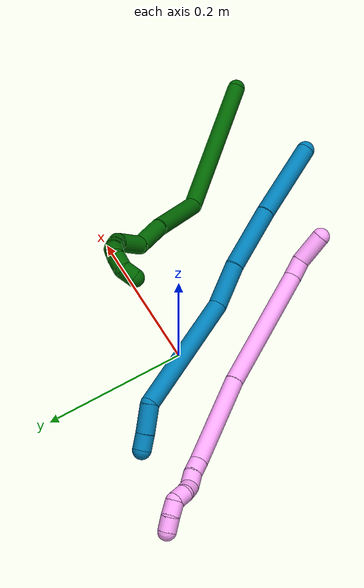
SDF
<sdf version="1.7">
 <world name="default">
  <model name="4">
   <static>0</static>
   <link name="4">
    <collision name="collision-cylinder-e_1_1_4">
     <pose>-0.019924 0.002762 0.008486 -0.314639 -1.14969 0.204811</pose>
     <geometry><cylinder><radius>0.0125</radius><length>0.043663</length></cylinder></geometry>
     <surface>
      <friction><ode><mu>1.16</mu><mu2>1.16</mu2><slip1>0</slip1><slip2>0</slip2></ode></friction>
      <contact><ode><kp>1e+06</kp><kd>1</kd><max_vel>0</max_vel><min_depth>0.001</min_depth></ode></contact>
     </surface>
    </collision>
    <visual name="visual-cylinder-e_1_1_4">
     <pose>-0.019924 0.002762 0.008486 -0.314639 -1.14969 0.204811</pose>
     <geometry><cylinder><radius>0.0125</radius><length>0.043663</length></cylinder></geometry>
     <material><ambient>1 0.65098 0.996078 1</ambient></material>
    </visual>
    <collision name="collision-cylinder-e_2_4_5">
     <pose>-0.051172 0.01146 0.019559 -1.15982 -1.05127 0.726235</pose>
     <geometry><cylinder><radius>0.0125</radius><length>0.026089</length></cylinder></geometry>
     <surface>
      <friction><ode><mu>1.16</mu><mu2>1.16</mu2><slip1>0</slip1><slip2>0</slip2></ode></friction>
      <contact><ode><kp>1e+06</kp><kd>1</kd><max_vel>0</max_vel><min_depth>0.001</min_depth></ode></contact>
     </surface>
    </collision>
    <visual name="visual-cylinder-e_2_4_5">
     <pose>-0.051172 0.01146 0.019559 -1.15982 -1.05127 0.726235</pose>
     <geometry><cylinder><radius>0.0125</radius><length>0.026089</length></cylinder></geometry>
     <material><ambient>1 0.65098 0.996078 1</ambient></material>
    </visual>
    <collision name="collision-cylinder-e_3_5_6">
     <pose>-0.140011 0.063397 0.017733 -1.66646 -1.03321 1.11746</pose>
     <geometry><cylinder><radius>0.0125</radius><length>0.18049</length></cylinder></geometry>
     <surface>
      <friction><ode><mu>1.16</mu><mu2>1.16</mu2><slip1>0</slip1><slip2>0</slip2></ode></friction>
      <contact><ode><kp>1e+06</kp><kd>1</kd><max_vel>0</max_vel><min_depth>0.001</min_depth></ode></contact>
     </surface>
    </collision>
    <visual name="visual-cylinder-e_3_5_6">
     <pose>-0.140011 0.063397 0.017733 -1.66646 -1.03321 1.11746</pose>
     <geometry><cylinder><radius>0.0125</radius><length>0.18049</length></cylinder></geometry>
     <material><ambient>1 0.65098 0.996078 1</ambient></material>
    </visual>
    <collision name="collision-cylinder-e_4_6_7">
     <pose>-0.269385 0.146487 0.011507 -1.6196 -0.949369 0.989627</pose>
     <geometry><cylinder><radius>0.0125</radius><length>0.127566</length></cylinder></geometry>
     <surface>
      <friction><ode><mu>1.16</mu><mu2>1.16</mu2><slip1>0</slip1><slip2>0</slip2></ode></friction>
      <contact><ode><kp>1e+06</kp><kd>1</kd><max_vel>0</max_vel><min_depth>0.001</min_depth></ode></contact>
     </surface>
    </collision>
    <visual name="visual-cylinder-e_4_6_7">
     <pose>-0.269385 0.146487 0.011507 -1.6196 -0.949369 0.989627</pose>
     <geometry><cylinder><radius>0.0125</radius><length>0.127566</length></cylinder></geometry>
     <material><ambient>1 0.65098 0.996078 1</ambient></material>
    </visual>
    <collision name="collision-cylinder-e_5_7_8">
     <pose>-0.329168 0.189641 0.007286 -1.949 -0.881961 1.21527</pose>
     <geometry><cylinder><radius>0.0125</radius><length>0.020531</length></cylinder></geometry>
     <surface>
      <friction><ode><mu>1.16</mu><mu2>1.16</mu2><slip1>0</slip1><slip2>0</slip2></ode></friction>
      <contact><ode><kp>1e+06</kp><kd>1</kd><max_vel>0</max_vel><min_depth>0.001</min_depth></ode></contact>
     </surface>
    </collision>
    <visual name="visual-cylinder-e_5_7_8">
     <pose>-0.329168 0.189641 0.007286 -1.949 -0.881961 1.21527</pose>
     <geometry><cylinder><radius>0.0125</radius><length>0.020531</length></cylinder></geometry>
     <material><ambient>1 0.65098 0.996078 1</ambient></material>
    </visual>
    <collision name="collision-cylinder-e_6_8_9">
     <pose>-0.34421 0.203206 0.003519 -1.74987 -0.751064 0.882009</pose>
     <geometry><cylinder><radius>0.0125</radius><length>0.020858</length></cylinder></geometry>
     <surface>
      <friction><ode><mu>1.16</mu><mu2>1.16</mu2><slip1>0</slip1><slip2>0</slip2></ode></friction>
      <contact><ode><kp>1e+06</kp><kd>1</kd><max_vel>0</max_vel><min_depth>0.001</min_depth></ode></contact>
     </surface>
    </collision>
    <visual name="visual-cylinder-e_6_8_9">
     <pose>-0.34421 0.203206 0.003519 -1.74987 -0.751064 0.882009</pose>
     <geometry><cylinder><radius>0.0125</radius><length>0.020858</length></cylinder></geometry>
     <material><ambient>1 0.65098 0.996078 1</ambient></material>
    </visual>
    <collision name="collision-cylinder-e_7_9_10">
     <pose>-0.356832 0.215777 -0.004891 -2.51824 -0.564985 1.46665</pose>
     <geometry><cylinder><radius>0.0125</radius><length>0.020567</length></cylinder></geometry>
     <surface>
      <friction><ode><mu>1.16</mu><mu2>1.16</mu2><slip1>0</slip1><slip2>0</slip2></ode></friction>
      <contact><ode><kp>1e+06</kp><kd>1</kd><max_vel>0</max_vel><min_depth>0.001</min_depth></ode></contact>
     </surface>
    </collision>
    <visual name="visual-cylinder-e_7_9_10">
     <pose>-0.356832 0.215777 -0.004891 -2.51824 -0.564985 1.46665</pose>
     <geometry><cylinder><radius>0.0125</radius><length>0.020567</length></cylinder></geometry>
     <material><ambient>1 0.65098 0.996078 1</ambient></material>
    </visual>
    <collision name="collision-cylinder-e_8_10_11">
     <pose>-0.370746 0.224043 -0.016391 -2.5186 -0.993393 2.06955</pose>
     <geometry><cylinder><radius>0.0125</radius><length>0.020068</length></cylinder></geometry>
     <surface>
      <friction><ode><mu>1.16</mu><mu2>1.16</mu2><slip1>0</slip1><slip2>0</slip2></ode></friction>
      <contact><ode><kp>1e+06</kp><kd>1</kd><max_vel>0</max_vel><min_depth>0.001</min_depth></ode></contact>
     </surface>
    </collision>
    <visual name="visual-cylinder-e_8_10_11">
     <pose>-0.370746 0.224043 -0.016391 -2.5186 -0.993393 2.06955</pose>
     <geometry><cylinder><radius>0.0125</radius><length>0.020068</length></cylinder></geometry>
     <material><ambient>1 0.65098 0.996078 1</ambient></material>
    </visual>
    <collision name="collision-cylinder-e_9_11_12">
     <pose>-0.386826 0.233254 -0.018282 -1.16882 -0.865209 0.592918</pose>
     <geometry><cylinder><radius>0.0125</radius><length>0.020158</length></cylinder></geometry>
     <surface>
      <friction><ode><mu>1.16</mu><mu2>1.16</mu2><slip1>0</slip1><slip2>0</slip2></ode></friction>
      <contact><ode><kp>1e+06</kp><kd>1</kd><max_vel>0</max_vel><min_depth>0.001</min_depth></ode></contact>
     </surface>
    </collision>
    <visual name="visual-cylinder-e_9_11_12">
     <pose>-0.386826 0.233254 -0.018282 -1.16882 -0.865209 0.592918</pose>
     <geometry><cylinder><radius>0.0125</radius><length>0.020158</length></cylinder></geometry>
     <material><ambient>1 0.65098 0.996078 1</ambient></material>
    </visual>
    <collision name="collision-cylinder-e_10_12_2">
     <pose>-0.401465 0.244685 -0.011009 -0.854373 -0.770244 0.364954</pose>
     <geometry><cylinder><radius>0.0125</radius><length>0.020011</length></cylinder></geometry>
     <surface>
      <friction><ode><mu>1.16</mu><mu2>1.16</mu2><slip1>0</slip1><slip2>0</slip2></ode></friction>
      <contact><ode><kp>1e+06</kp><kd>1</kd><max_vel>0</max_vel><min_depth>0.001</min_depth></ode></contact>
     </surface>
    </collision>
    <visual name="visual-cylinder-e_10_12_2">
     <pose>-0.401465 0.244685 -0.011009 -0.854373 -0.770244 0.364954</pose>
     <geometry><cylinder><radius>0.0125</radius><length>0.020011</length></cylinder></geometry>
     <material><ambient>1 0.65098 0.996078 1</ambient></material>
    </visual>
    <collision name="collision-sphere-2">
     <pose>-0.408432 0.250101 -0.006293 0 -0 0</pose>
     <geometry><sphere><radius>0.0125</radius></sphere></geometry>
     <surface>
      <friction><ode><mu>1.16</mu><mu2>1.16</mu2><slip1>0</slip1><slip2>0</slip2></ode></friction>
      <contact><ode><kp>1e+06</kp><kd>1</kd><max_vel>0</max_vel><min_depth>0.001</min_depth></ode></contact>
     </surface>
    </collision>
    <visual name="visual-sphere-2">
     <pose>-0.408432 0.250101 -0.006293 0 -0 0</pose>
     <geometry><sphere><radius>0.0125</radius></sphere></geometry>
     <material><ambient>1 0.65098 0.996078 1</ambient></material>
    </visual>
    <collision name="collision-sphere-12">
     <pose>-0.394498 0.239269 -0.015725 0 -0 0</pose>
     <geometry><sphere><radius>0.0125</radius></sphere></geometry>
     <surface>
      <friction><ode><mu>1.16</mu><mu2>1.16</mu2><slip1>0</slip1><slip2>0</slip2></ode></friction>
      <contact><ode><kp>1e+06</kp><kd>1</kd><max_vel>0</max_vel><min_depth>0.001</min_depth></ode></contact>
     </surface>
    </collision>
    <visual name="visual-sphere-12">
     <pose>-0.394498 0.239269 -0.015725 0 -0 0</pose>
     <geometry><sphere><radius>0.0125</radius></sphere></geometry>
     <material><ambient>1 0.65098 0.996078 1</ambient></material>
    </visual>
    <collision name="collision-sphere-11">
     <pose>-0.379153 0.227239 -0.020839 0 -0 0</pose>
     <geometry><sphere><radius>0.0125</radius></sphere></geometry>
     <surface>
      <friction><ode><mu>1.16</mu><mu2>1.16</mu2><slip1>0</slip1><slip2>0</slip2></ode></friction>
      <contact><ode><kp>1e+06</kp><kd>1</kd><max_vel>0</max_vel><min_depth>0.001</min_depth></ode></contact>
     </surface>
    </collision>
    <visual name="visual-sphere-11">
     <pose>-0.379153 0.227239 -0.020839 0 -0 0</pose>
     <geometry><sphere><radius>0.0125</radius></sphere></geometry>
     <material><ambient>1 0.65098 0.996078 1</ambient></material>
    </visual>
    <collision name="collision-sphere-10">
     <pose>-0.362338 0.220848 -0.011943 0 -0 0</pose>
     <geometry><sphere><radius>0.0125</radius></sphere></geometry>
     <surface>
      <friction><ode><mu>1.16</mu><mu2>1.16</mu2><slip1>0</slip1><slip2>0</slip2></ode></friction>
      <contact><ode><kp>1e+06</kp><kd>1</kd><max_vel>0</max_vel><min_depth>0.001</min_depth></ode></contact>
     </surface>
    </collision>
    <visual name="visual-sphere-10">
     <pose>-0.362338 0.220848 -0.011943 0 -0 0</pose>
     <geometry><sphere><radius>0.0125</radius></sphere></geometry>
     <material><ambient>1 0.65098 0.996078 1</ambient></material>
    </visual>
    <collision name="collision-sphere-9">
     <pose>-0.351327 0.210707 0.002161 0 -0 0</pose>
     <geometry><sphere><radius>0.0125</radius></sphere></geometry>
     <surface>
      <friction><ode><mu>1.16</mu><mu2>1.16</mu2><slip1>0</slip1><slip2>0</slip2></ode></friction>
      <contact><ode><kp>1e+06</kp><kd>1</kd><max_vel>0</max_vel><min_depth>0.001</min_depth></ode></contact>
     </surface>
    </collision>
    <visual name="visual-sphere-9">
     <pose>-0.351327 0.210707 0.002161 0 -0 0</pose>
     <geometry><sphere><radius>0.0125</radius></sphere></geometry>
     <material><ambient>1 0.65098 0.996078 1</ambient></material>
    </visual>
    <collision name="collision-sphere-4">
     <pose>-0.039849 0.005523 0.016972 0 -0 0</pose>
     <geometry><sphere><radius>0.0125</radius></sphere></geometry>
     <surface>
      <friction><ode><mu>1.16</mu><mu2>1.16</mu2><slip1>0</slip1><slip2>0</slip2></ode></friction>
      <contact><ode><kp>1e+06</kp><kd>1</kd><max_vel>0</max_vel><min_depth>0.001</min_depth></ode></contact>
     </surface>
    </collision>
    <visual name="visual-sphere-4">
     <pose>-0.039849 0.005523 0.016972 0 -0 0</pose>
     <geometry><sphere><radius>0.0125</radius></sphere></geometry>
     <material><ambient>1 0.65098 0.996078 1</ambient></material>
    </visual>
    <collision name="collision-sphere-1">
     <geometry><sphere><radius>0.0125</radius></sphere></geometry>
     <surface>
      <friction><ode><mu>1.16</mu><mu2>1.16</mu2><slip1>0</slip1><slip2>0</slip2></ode></friction>
      <contact><ode><kp>1e+06</kp><kd>1</kd><max_vel>0</max_vel><min_depth>0.001</min_depth></ode></contact>
     </surface>
    </collision>
    <visual name="visual-sphere-1">
     <geometry><sphere><radius>0.0125</radius></sphere></geometry>
     <material><ambient>1 0.65098 0.996078 1</ambient></material>
    </visual>
    <collision name="collision-sphere-8">
     <pose>-0.337093 0.195705 0.004876 0 -0 0</pose>
     <geometry><sphere><radius>0.0125</radius></sphere></geometry>
     <surface>
      <friction><ode><mu>1.16</mu><mu2>1.16</mu2><slip1>0</slip1><slip2>0</slip2></ode></friction>
      <contact><ode><kp>1e+06</kp><kd>1</kd><max_vel>0</max_vel><min_depth>0.001</min_depth></ode></contact>
     </surface>
    </collision>
    <visual name="visual-sphere-8">
     <pose>-0.337093 0.195705 0.004876 0 -0 0</pose>
     <geometry><sphere><radius>0.0125</radius></sphere></geometry>
     <material><ambient>1 0.65098 0.996078 1</ambient></material>
    </visual>
    <collision name="collision-sphere-5">
     <pose>-0.062495 0.017397 0.022146 0 -0 0</pose>
     <geometry><sphere><radius>0.0125</radius></sphere></geometry>
     <surface>
      <friction><ode><mu>1.16</mu><mu2>1.16</mu2><slip1>0</slip1><slip2>0</slip2></ode></friction>
      <contact><ode><kp>1e+06</kp><kd>1</kd><max_vel>0</max_vel><min_depth>0.001</min_depth></ode></contact>
     </surface>
    </collision>
    <visual name="visual-sphere-5">
     <pose>-0.062495 0.017397 0.022146 0 -0 0</pose>
     <geometry><sphere><radius>0.0125</radius></sphere></geometry>
     <material><ambient>1 0.65098 0.996078 1</ambient></material>
    </visual>
    <collision name="collision-sphere-6">
     <pose>-0.217526 0.109397 0.013319 0 -0 0</pose>
     <geometry><sphere><radius>0.0125</radius></sphere></geometry>
     <surface>
      <friction><ode><mu>1.16</mu><mu2>1.16</mu2><slip1>0</slip1><slip2>0</slip2></ode></friction>
      <contact><ode><kp>1e+06</kp><kd>1</kd><max_vel>0</max_vel><min_depth>0.001</min_depth></ode></contact>
     </surface>
    </collision>
    <visual name="visual-sphere-6">
     <pose>-0.217526 0.109397 0.013319 0 -0 0</pose>
     <geometry><sphere><radius>0.0125</radius></sphere></geometry>
     <material><ambient>1 0.65098 0.996078 1</ambient></material>
    </visual>
    <collision name="collision-sphere-7">
     <pose>-0.321244 0.183577 0.009695 0 -0 0</pose>
     <geometry><sphere><radius>0.0125</radius></sphere></geometry>
     <surface>
      <friction><ode><mu>1.16</mu><mu2>1.16</mu2><slip1>0</slip1><slip2>0</slip2></ode></friction>
      <contact><ode><kp>1e+06</kp><kd>1</kd><max_vel>0</max_vel><min_depth>0.001</min_depth></ode></contact>
     </surface>
    </collision>
    <visual name="visual-sphere-7">
     <pose>-0.321244 0.183577 0.009695 0 -0 0</pose>
     <geometry><sphere><radius>0.0125</radius></sphere></geometry>
     <material><ambient>1 0.65098 0.996078 1</ambient></material>
    </visual>
    <inertial>
     <pose>-0.212775 0.114426 0.009508 0 -0 0</pose>
     <mass>0.5</mass>
     <inertia>
      <ixx>0.000465</ixx>
      <ixy>0</ixy>
      <ixz>0</ixz>
      <iyy>0.000834</iyy>
      <iyz>0</iyz>
      <izz>0.000224</izz>
     </inertia>
    </inertial>
   </link>
   <pose>0.041693 -0.252185 0.040095 3.01784 -0.127762 -1.53072</pose>
  </model>
  <model name="6">
   <static>0</static>
   <link name="6">
    <collision name="collision-cylinder-e_1_1_4">
     <pose>0.005714 0.001853 -0.100913 -3.12324 0.056553 -2.51398</pose>
     <geometry><cylinder><radius>0.0125</radius><length>0.202184</length></cylinder></geometry>
     <surface>
      <friction><ode><mu>1.16</mu><mu2>1.16</mu2><slip1>0</slip1><slip2>0</slip2></ode></friction>
      <contact><ode><kp>1e+06</kp><kd>1</kd><max_vel>0</max_vel><min_depth>0.001</min_depth></ode></contact>
     </surface>
    </collision>
    <visual name="visual-cylinder-e_1_1_4">
     <pose>0.005714 0.001853 -0.100913 -3.12324 0.056553 -2.51398</pose>
     <geometry><cylinder><radius>0.0125</radius><length>0.202184</length></cylinder></geometry>
     <material><ambient>0 0.392157 0.003922 1</ambient></material>
    </visual>
    <collision name="collision-cylinder-e_2_4_5">
     <pose>-0.003072 0.030557 -0.239539 -2.52285 -0.303528 0.892578</pose>
     <geometry><cylinder><radius>0.0125</radius><length>0.097025</length></cylinder></geometry>
     <surface>
      <friction><ode><mu>1.16</mu><mu2>1.16</mu2><slip1>0</slip1><slip2>0</slip2></ode></friction>
      <contact><ode><kp>1e+06</kp><kd>1</kd><max_vel>0</max_vel><min_depth>0.001</min_depth></ode></contact>
     </surface>
    </collision>
    <visual name="visual-cylinder-e_2_4_5">
     <pose>-0.003072 0.030557 -0.239539 -2.52285 -0.303528 0.892578</pose>
     <geometry><cylinder><radius>0.0125</radius><length>0.097025</length></cylinder></geometry>
     <material><ambient>0 0.392157 0.003922 1</ambient></material>
    </visual>
    <collision name="collision-cylinder-e_3_5_6">
     <pose>-0.02199 0.068848 -0.299068 -2.65866 -0.177455 0.693294</pose>
     <geometry><cylinder><radius>0.0125</radius><length>0.050054</length></cylinder></geometry>
     <surface>
      <friction><ode><mu>1.16</mu><mu2>1.16</mu2><slip1>0</slip1><slip2>0</slip2></ode></friction>
      <contact><ode><kp>1e+06</kp><kd>1</kd><max_vel>0</max_vel><min_depth>0.001</min_depth></ode></contact>
     </surface>
    </collision>
    <visual name="visual-cylinder-e_3_5_6">
     <pose>-0.02199 0.068848 -0.299068 -2.65866 -0.177455 0.693294</pose>
     <geometry><cylinder><radius>0.0125</radius><length>0.050054</length></cylinder></geometry>
     <material><ambient>0 0.392157 0.003922 1</ambient></material>
    </visual>
    <collision name="collision-cylinder-e_4_6_7">
     <pose>-0.031169 0.098828 -0.330141 -2.03383 -0.225836 0.36269</pose>
     <geometry><cylinder><radius>0.0125</radius><length>0.042526</length></cylinder></geometry>
     <surface>
      <friction><ode><mu>1.16</mu><mu2>1.16</mu2><slip1>0</slip1><slip2>0</slip2></ode></friction>
      <contact><ode><kp>1e+06</kp><kd>1</kd><max_vel>0</max_vel><min_depth>0.001</min_depth></ode></contact>
     </surface>
    </collision>
    <visual name="visual-cylinder-e_4_6_7">
     <pose>-0.031169 0.098828 -0.330141 -2.03383 -0.225836 0.36269</pose>
     <geometry><cylinder><radius>0.0125</radius><length>0.042526</length></cylinder></geometry>
     <material><ambient>0 0.392157 0.003922 1</ambient></material>
    </visual>
    <collision name="collision-cylinder-e_5_7_8">
     <pose>-0.044545 0.122136 -0.347611 -2.61578 -0.736786 1.92387</pose>
     <geometry><cylinder><radius>0.0125</radius><length>0.025645</length></cylinder></geometry>
     <surface>
      <friction><ode><mu>1.16</mu><mu2>1.16</mu2><slip1>0</slip1><slip2>0</slip2></ode></friction>
      <contact><ode><kp>1e+06</kp><kd>1</kd><max_vel>0</max_vel><min_depth>0.001</min_depth></ode></contact>
     </surface>
    </collision>
    <visual name="visual-cylinder-e_5_7_8">
     <pose>-0.044545 0.122136 -0.347611 -2.61578 -0.736786 1.92387</pose>
     <geometry><cylinder><radius>0.0125</radius><length>0.025645</length></cylinder></geometry>
     <material><ambient>0 0.392157 0.003922 1</ambient></material>
    </visual>
    <collision name="collision-cylinder-e_6_8_9">
     <pose>-0.060487 0.130558 -0.362261 -2.62511 -0.78027 1.99965</pose>
     <geometry><cylinder><radius>0.0125</radius><length>0.020829</length></cylinder></geometry>
     <surface>
      <friction><ode><mu>1.16</mu><mu2>1.16</mu2><slip1>0</slip1><slip2>0</slip2></ode></friction>
      <contact><ode><kp>1e+06</kp><kd>1</kd><max_vel>0</max_vel><min_depth>0.001</min_depth></ode></contact>
     </surface>
    </collision>
    <visual name="visual-cylinder-e_6_8_9">
     <pose>-0.060487 0.130558 -0.362261 -2.62511 -0.78027 1.99965</pose>
     <geometry><cylinder><radius>0.0125</radius><length>0.020829</length></cylinder></geometry>
     <material><ambient>0 0.392157 0.003922 1</ambient></material>
    </visual>
    <collision name="collision-cylinder-e_7_9_10">
     <pose>-0.075072 0.133677 -0.376735 3.07503 -0.733419 -2.96867</pose>
     <geometry><cylinder><radius>0.0125</radius><length>0.021686</length></cylinder></geometry>
     <surface>
      <friction><ode><mu>1.16</mu><mu2>1.16</mu2><slip1>0</slip1><slip2>0</slip2></ode></friction>
      <contact><ode><kp>1e+06</kp><kd>1</kd><max_vel>0</max_vel><min_depth>0.001</min_depth></ode></contact>
     </surface>
    </collision>
    <visual name="visual-cylinder-e_7_9_10">
     <pose>-0.075072 0.133677 -0.376735 3.07503 -0.733419 -2.96867</pose>
     <geometry><cylinder><radius>0.0125</radius><length>0.021686</length></cylinder></geometry>
     <material><ambient>0 0.392157 0.003922 1</ambient></material>
    </visual>
    <collision name="collision-cylinder-e_8_10_11">
     <pose>-0.086395 0.12783 -0.392216 2.52181 -0.41824 -1.1706</pose>
     <geometry><cylinder><radius>0.0125</radius><length>0.020013</length></cylinder></geometry>
     <surface>
      <friction><ode><mu>1.16</mu><mu2>1.16</mu2><slip1>0</slip1><slip2>0</slip2></ode></friction>
      <contact><ode><kp>1e+06</kp><kd>1</kd><max_vel>0</max_vel><min_depth>0.001</min_depth></ode></contact>
     </surface>
    </collision>
    <visual name="visual-cylinder-e_8_10_11">
     <pose>-0.086395 0.12783 -0.392216 2.52181 -0.41824 -1.1706</pose>
     <geometry><cylinder><radius>0.0125</radius><length>0.020013</length></cylinder></geometry>
     <material><ambient>0 0.392157 0.003922 1</ambient></material>
    </visual>
    <collision name="collision-cylinder-e_9_11_2">
     <pose>-0.093836 0.113583 -0.402679 1.89668 -0.343842 -0.474793</pose>
     <geometry><cylinder><radius>0.0125</radius><length>0.020038</length></cylinder></geometry>
     <surface>
      <friction><ode><mu>1.16</mu><mu2>1.16</mu2><slip1>0</slip1><slip2>0</slip2></ode></friction>
      <contact><ode><kp>1e+06</kp><kd>1</kd><max_vel>0</max_vel><min_depth>0.001</min_depth></ode></contact>
     </surface>
    </collision>
    <visual name="visual-cylinder-e_9_11_2">
     <pose>-0.093836 0.113583 -0.402679 1.89668 -0.343842 -0.474793</pose>
     <geometry><cylinder><radius>0.0125</radius><length>0.020038</length></cylinder></geometry>
     <material><ambient>0 0.392157 0.003922 1</ambient></material>
    </visual>
    <collision name="collision-sphere-2">
     <pose>-0.097214 0.104647 -0.405699 0 -0 0</pose>
     <geometry><sphere><radius>0.0125</radius></sphere></geometry>
     <surface>
      <friction><ode><mu>1.16</mu><mu2>1.16</mu2><slip1>0</slip1><slip2>0</slip2></ode></friction>
      <contact><ode><kp>1e+06</kp><kd>1</kd><max_vel>0</max_vel><min_depth>0.001</min_depth></ode></contact>
     </surface>
    </collision>
    <visual name="visual-sphere-2">
     <pose>-0.097214 0.104647 -0.405699 0 -0 0</pose>
     <geometry><sphere><radius>0.0125</radius></sphere></geometry>
     <material><ambient>0 0.392157 0.003922 1</ambient></material>
    </visual>
    <collision name="collision-sphere-11">
     <pose>-0.090459 0.122519 -0.399659 0 -0 0</pose>
     <geometry><sphere><radius>0.0125</radius></sphere></geometry>
     <surface>
      <friction><ode><mu>1.16</mu><mu2>1.16</mu2><slip1>0</slip1><slip2>0</slip2></ode></friction>
      <contact><ode><kp>1e+06</kp><kd>1</kd><max_vel>0</max_vel><min_depth>0.001</min_depth></ode></contact>
     </surface>
    </collision>
    <visual name="visual-sphere-11">
     <pose>-0.090459 0.122519 -0.399659 0 -0 0</pose>
     <geometry><sphere><radius>0.0125</radius></sphere></geometry>
     <material><ambient>0 0.392157 0.003922 1</ambient></material>
    </visual>
    <collision name="collision-sphere-10">
     <pose>-0.082331 0.133141 -0.384773 0 -0 0</pose>
     <geometry><sphere><radius>0.0125</radius></sphere></geometry>
     <surface>
      <friction><ode><mu>1.16</mu><mu2>1.16</mu2><slip1>0</slip1><slip2>0</slip2></ode></friction>
      <contact><ode><kp>1e+06</kp><kd>1</kd><max_vel>0</max_vel><min_depth>0.001</min_depth></ode></contact>
     </surface>
    </collision>
    <visual name="visual-sphere-10">
     <pose>-0.082331 0.133141 -0.384773 0 -0 0</pose>
     <geometry><sphere><radius>0.0125</radius></sphere></geometry>
     <material><ambient>0 0.392157 0.003922 1</ambient></material>
    </visual>
    <collision name="collision-sphere-9">
     <pose>-0.067814 0.134213 -0.368698 0 -0 0</pose>
     <geometry><sphere><radius>0.0125</radius></sphere></geometry>
     <surface>
      <friction><ode><mu>1.16</mu><mu2>1.16</mu2><slip1>0</slip1><slip2>0</slip2></ode></friction>
      <contact><ode><kp>1e+06</kp><kd>1</kd><max_vel>0</max_vel><min_depth>0.001</min_depth></ode></contact>
     </surface>
    </collision>
    <visual name="visual-sphere-9">
     <pose>-0.067814 0.134213 -0.368698 0 -0 0</pose>
     <geometry><sphere><radius>0.0125</radius></sphere></geometry>
     <material><ambient>0 0.392157 0.003922 1</ambient></material>
    </visual>
    <collision name="collision-sphere-4">
     <pose>0.011428 0.003705 -0.201827 0 -0 0</pose>
     <geometry><sphere><radius>0.0125</radius></sphere></geometry>
     <surface>
      <friction><ode><mu>1.16</mu><mu2>1.16</mu2><slip1>0</slip1><slip2>0</slip2></ode></friction>
      <contact><ode><kp>1e+06</kp><kd>1</kd><max_vel>0</max_vel><min_depth>0.001</min_depth></ode></contact>
     </surface>
    </collision>
    <visual name="visual-sphere-4">
     <pose>0.011428 0.003705 -0.201827 0 -0 0</pose>
     <geometry><sphere><radius>0.0125</radius></sphere></geometry>
     <material><ambient>0 0.392157 0.003922 1</ambient></material>
    </visual>
    <collision name="collision-sphere-1">
     <geometry><sphere><radius>0.0125</radius></sphere></geometry>
     <surface>
      <friction><ode><mu>1.16</mu><mu2>1.16</mu2><slip1>0</slip1><slip2>0</slip2></ode></friction>
      <contact><ode><kp>1e+06</kp><kd>1</kd><max_vel>0</max_vel><min_depth>0.001</min_depth></ode></contact>
     </surface>
    </collision>
    <visual name="visual-sphere-1">
     <geometry><sphere><radius>0.0125</radius></sphere></geometry>
     <material><ambient>0 0.392157 0.003922 1</ambient></material>
    </visual>
    <collision name="collision-sphere-8">
     <pose>-0.053161 0.126902 -0.355825 0 -0 0</pose>
     <geometry><sphere><radius>0.0125</radius></sphere></geometry>
     <surface>
      <friction><ode><mu>1.16</mu><mu2>1.16</mu2><slip1>0</slip1><slip2>0</slip2></ode></friction>
      <contact><ode><kp>1e+06</kp><kd>1</kd><max_vel>0</max_vel><min_depth>0.001</min_depth></ode></contact>
     </surface>
    </collision>
    <visual name="visual-sphere-8">
     <pose>-0.053161 0.126902 -0.355825 0 -0 0</pose>
     <geometry><sphere><radius>0.0125</radius></sphere></geometry>
     <material><ambient>0 0.392157 0.003922 1</ambient></material>
    </visual>
    <collision name="collision-sphere-5">
     <pose>-0.017572 0.057408 -0.277251 0 -0 0</pose>
     <geometry><sphere><radius>0.0125</radius></sphere></geometry>
     <surface>
      <friction><ode><mu>1.16</mu><mu2>1.16</mu2><slip1>0</slip1><slip2>0</slip2></ode></friction>
      <contact><ode><kp>1e+06</kp><kd>1</kd><max_vel>0</max_vel><min_depth>0.001</min_depth></ode></contact>
     </surface>
    </collision>
    <visual name="visual-sphere-5">
     <pose>-0.017572 0.057408 -0.277251 0 -0 0</pose>
     <geometry><sphere><radius>0.0125</radius></sphere></geometry>
     <material><ambient>0 0.392157 0.003922 1</ambient></material>
    </visual>
    <collision name="collision-sphere-6">
     <pose>-0.026407 0.080287 -0.320885 0 -0 0</pose>
     <geometry><sphere><radius>0.0125</radius></sphere></geometry>
     <surface>
      <friction><ode><mu>1.16</mu><mu2>1.16</mu2><slip1>0</slip1><slip2>0</slip2></ode></friction>
      <contact><ode><kp>1e+06</kp><kd>1</kd><max_vel>0</max_vel><min_depth>0.001</min_depth></ode></contact>
     </surface>
    </collision>
    <visual name="visual-sphere-6">
     <pose>-0.026407 0.080287 -0.320885 0 -0 0</pose>
     <geometry><sphere><radius>0.0125</radius></sphere></geometry>
     <material><ambient>0 0.392157 0.003922 1</ambient></material>
    </visual>
    <collision name="collision-sphere-7">
     <pose>-0.03593 0.117369 -0.339398 0 -0 0</pose>
     <geometry><sphere><radius>0.0125</radius></sphere></geometry>
     <surface>
      <friction><ode><mu>1.16</mu><mu2>1.16</mu2><slip1>0</slip1><slip2>0</slip2></ode></friction>
      <contact><ode><kp>1e+06</kp><kd>1</kd><max_vel>0</max_vel><min_depth>0.001</min_depth></ode></contact>
     </surface>
    </collision>
    <visual name="visual-sphere-7">
     <pose>-0.03593 0.117369 -0.339398 0 -0 0</pose>
     <geometry><sphere><radius>0.0125</radius></sphere></geometry>
     <material><ambient>0 0.392157 0.003922 1</ambient></material>
    </visual>
    <inertial>
     <pose>-0.018417 0.049146 -0.226403 0 -0 0</pose>
     <mass>0.5</mass>
     <inertia>
      <ixx>-0.000844</ixx>
      <ixy>0</ixy>
      <ixz>0</ixz>
      <iyy>0.000198</iyy>
      <iyz>0</iyz>
      <izz>-0.000107</izz>
     </inertia>
    </inertial>
   </link>
   <pose>0.320101 -0.283914 0.032039 1.50656 0.958064 0.714946</pose>
  </model>
  <model name="9">
   <static>0</static>
   <link name="9">
    <collision name="collision-cylinder-e_1_1_4">
     <pose>-0.020985 -0.004079 -0.05364 3.06569 -0.371944 -2.74335</pose>
     <geometry><cylinder><radius>0.0125</radius><length>0.115486</length></cylinder></geometry>
     <surface>
      <friction><ode><mu>1.16</mu><mu2>1.16</mu2><slip1>0</slip1><slip2>0</slip2></ode></friction>
      <contact><ode><kp>1e+06</kp><kd>1</kd><max_vel>0</max_vel><min_depth>0.001</min_depth></ode></contact>
     </surface>
    </collision>
    <visual name="visual-cylinder-e_1_1_4">
     <pose>-0.020985 -0.004079 -0.05364 3.06569 -0.371944 -2.74335</pose>
     <geometry><cylinder><radius>0.0125</radius><length>0.115486</length></cylinder></geometry>
     <material><ambient>0 0.490196 0.709804 1</ambient></material>
    </visual>
    <collision name="collision-cylinder-e_2_4_5">
     <pose>-0.056542 -0.00909 -0.150256 3.11991 -0.326812 -3.01027</pose>
     <geometry><cylinder><radius>0.0125</radius><length>0.090777</length></cylinder></geometry>
     <surface>
      <friction><ode><mu>1.16</mu><mu2>1.16</mu2><slip1>0</slip1><slip2>0</slip2></ode></friction>
      <contact><ode><kp>1e+06</kp><kd>1</kd><max_vel>0</max_vel><min_depth>0.001</min_depth></ode></contact>
     </surface>
    </collision>
    <visual name="visual-cylinder-e_2_4_5">
     <pose>-0.056542 -0.00909 -0.150256 3.11991 -0.326812 -3.01027</pose>
     <geometry><cylinder><radius>0.0125</radius><length>0.090777</length></cylinder></geometry>
     <material><ambient>0 0.490196 0.709804 1</ambient></material>
    </visual>
    <collision name="collision-cylinder-e_3_5_6">
     <pose>-0.076987 -0.008168 -0.222642 -3.07863 -0.196764 2.52386</pose>
     <geometry><cylinder><radius>0.0125</radius><length>0.060096</length></cylinder></geometry>
     <surface>
      <friction><ode><mu>1.16</mu><mu2>1.16</mu2><slip1>0</slip1><slip2>0</slip2></ode></friction>
      <contact><ode><kp>1e+06</kp><kd>1</kd><max_vel>0</max_vel><min_depth>0.001</min_depth></ode></contact>
     </surface>
    </collision>
    <visual name="visual-cylinder-e_3_5_6">
     <pose>-0.076987 -0.008168 -0.222642 -3.07863 -0.196764 2.52386</pose>
     <geometry><cylinder><radius>0.0125</radius><length>0.060096</length></cylinder></geometry>
     <material><ambient>0 0.490196 0.709804 1</ambient></material>
    </visual>
    <collision name="collision-cylinder-e_4_6_7">
     <pose>-0.117252 -0.017215 -0.330868 3.00414 -0.407974 -2.49916</pose>
     <geometry><cylinder><radius>0.0125</radius><length>0.173363</length></cylinder></geometry>
     <surface>
      <friction><ode><mu>1.16</mu><mu2>1.16</mu2><slip1>0</slip1><slip2>0</slip2></ode></friction>
      <contact><ode><kp>1e+06</kp><kd>1</kd><max_vel>0</max_vel><min_depth>0.001</min_depth></ode></contact>
     </surface>
    </collision>
    <visual name="visual-cylinder-e_4_6_7">
     <pose>-0.117252 -0.017215 -0.330868 3.00414 -0.407974 -2.49916</pose>
     <geometry><cylinder><radius>0.0125</radius><length>0.173363</length></cylinder></geometry>
     <material><ambient>0 0.490196 0.709804 1</ambient></material>
    </visual>
    <collision name="collision-cylinder-e_5_7_8">
     <pose>-0.149776 -0.023416 -0.428533 -2.89716 0.095811 -0.744255</pose>
     <geometry><cylinder><radius>0.0125</radius><length>0.03903</length></cylinder></geometry>
     <surface>
      <friction><ode><mu>1.16</mu><mu2>1.16</mu2><slip1>0</slip1><slip2>0</slip2></ode></friction>
      <contact><ode><kp>1e+06</kp><kd>1</kd><max_vel>0</max_vel><min_depth>0.001</min_depth></ode></contact>
     </surface>
    </collision>
    <visual name="visual-cylinder-e_5_7_8">
     <pose>-0.149776 -0.023416 -0.428533 -2.89716 0.095811 -0.744255</pose>
     <geometry><cylinder><radius>0.0125</radius><length>0.03903</length></cylinder></geometry>
     <material><ambient>0 0.490196 0.709804 1</ambient></material>
    </visual>
    <collision name="collision-cylinder-e_6_8_2">
     <pose>-0.147349 -0.016007 -0.457639 -2.8835 0.052753 -0.401144</pose>
     <geometry><cylinder><radius>0.0125</radius><length>0.021248</length></cylinder></geometry>
     <surface>
      <friction><ode><mu>1.16</mu><mu2>1.16</mu2><slip1>0</slip1><slip2>0</slip2></ode></friction>
      <contact><ode><kp>1e+06</kp><kd>1</kd><max_vel>0</max_vel><min_depth>0.001</min_depth></ode></contact>
     </surface>
    </collision>
    <visual name="visual-cylinder-e_6_8_2">
     <pose>-0.147349 -0.016007 -0.457639 -2.8835 0.052753 -0.401144</pose>
     <geometry><cylinder><radius>0.0125</radius><length>0.021248</length></cylinder></geometry>
     <material><ambient>0 0.490196 0.709804 1</ambient></material>
    </visual>
    <collision name="collision-sphere-2">
     <pose>-0.146789 -0.013299 -0.467897 0 -0 0</pose>
     <geometry><sphere><radius>0.0125</radius></sphere></geometry>
     <surface>
      <friction><ode><mu>1.16</mu><mu2>1.16</mu2><slip1>0</slip1><slip2>0</slip2></ode></friction>
      <contact><ode><kp>1e+06</kp><kd>1</kd><max_vel>0</max_vel><min_depth>0.001</min_depth></ode></contact>
     </surface>
    </collision>
    <visual name="visual-sphere-2">
     <pose>-0.146789 -0.013299 -0.467897 0 -0 0</pose>
     <geometry><sphere><radius>0.0125</radius></sphere></geometry>
     <material><ambient>0 0.490196 0.709804 1</ambient></material>
    </visual>
    <collision name="collision-sphere-4">
     <pose>-0.041971 -0.008158 -0.10728 0 -0 0</pose>
     <geometry><sphere><radius>0.0125</radius></sphere></geometry>
     <surface>
      <friction><ode><mu>1.16</mu><mu2>1.16</mu2><slip1>0</slip1><slip2>0</slip2></ode></friction>
      <contact><ode><kp>1e+06</kp><kd>1</kd><max_vel>0</max_vel><min_depth>0.001</min_depth></ode></contact>
     </surface>
    </collision>
    <visual name="visual-sphere-4">
     <pose>-0.041971 -0.008158 -0.10728 0 -0 0</pose>
     <geometry><sphere><radius>0.0125</radius></sphere></geometry>
     <material><ambient>0 0.490196 0.709804 1</ambient></material>
    </visual>
    <collision name="collision-sphere-1">
     <geometry><sphere><radius>0.0125</radius></sphere></geometry>
     <surface>
      <friction><ode><mu>1.16</mu><mu2>1.16</mu2><slip1>0</slip1><slip2>0</slip2></ode></friction>
      <contact><ode><kp>1e+06</kp><kd>1</kd><max_vel>0</max_vel><min_depth>0.001</min_depth></ode></contact>
     </surface>
    </collision>
    <visual name="visual-sphere-1">
     <geometry><sphere><radius>0.0125</radius></sphere></geometry>
     <material><ambient>0 0.490196 0.709804 1</ambient></material>
    </visual>
    <collision name="collision-sphere-8">
     <pose>-0.147909 -0.018715 -0.447381 0 -0 0</pose>
     <geometry><sphere><radius>0.0125</radius></sphere></geometry>
     <surface>
      <friction><ode><mu>1.16</mu><mu2>1.16</mu2><slip1>0</slip1><slip2>0</slip2></ode></friction>
      <contact><ode><kp>1e+06</kp><kd>1</kd><max_vel>0</max_vel><min_depth>0.001</min_depth></ode></contact>
     </surface>
    </collision>
    <visual name="visual-sphere-8">
     <pose>-0.147909 -0.018715 -0.447381 0 -0 0</pose>
     <geometry><sphere><radius>0.0125</radius></sphere></geometry>
     <material><ambient>0 0.490196 0.709804 1</ambient></material>
    </visual>
    <collision name="collision-sphere-5">
     <pose>-0.071113 -0.010022 -0.193232 0 -0 0</pose>
     <geometry><sphere><radius>0.0125</radius></sphere></geometry>
     <surface>
      <friction><ode><mu>1.16</mu><mu2>1.16</mu2><slip1>0</slip1><slip2>0</slip2></ode></friction>
      <contact><ode><kp>1e+06</kp><kd>1</kd><max_vel>0</max_vel><min_depth>0.001</min_depth></ode></contact>
     </surface>
    </collision>
    <visual name="visual-sphere-5">
     <pose>-0.071113 -0.010022 -0.193232 0 -0 0</pose>
     <geometry><sphere><radius>0.0125</radius></sphere></geometry>
     <material><ambient>0 0.490196 0.709804 1</ambient></material>
    </visual>
    <collision name="collision-sphere-6">
     <pose>-0.082861 -0.006314 -0.252052 0 -0 0</pose>
     <geometry><sphere><radius>0.0125</radius></sphere></geometry>
     <surface>
      <friction><ode><mu>1.16</mu><mu2>1.16</mu2><slip1>0</slip1><slip2>0</slip2></ode></friction>
      <contact><ode><kp>1e+06</kp><kd>1</kd><max_vel>0</max_vel><min_depth>0.001</min_depth></ode></contact>
     </surface>
    </collision>
    <visual name="visual-sphere-6">
     <pose>-0.082861 -0.006314 -0.252052 0 -0 0</pose>
     <geometry><sphere><radius>0.0125</radius></sphere></geometry>
     <material><ambient>0 0.490196 0.709804 1</ambient></material>
    </visual>
    <collision name="collision-sphere-7">
     <pose>-0.151643 -0.028117 -0.409685 0 -0 0</pose>
     <geometry><sphere><radius>0.0125</radius></sphere></geometry>
     <surface>
      <friction><ode><mu>1.16</mu><mu2>1.16</mu2><slip1>0</slip1><slip2>0</slip2></ode></friction>
      <contact><ode><kp>1e+06</kp><kd>1</kd><max_vel>0</max_vel><min_depth>0.001</min_depth></ode></contact>
     </surface>
    </collision>
    <visual name="visual-sphere-7">
     <pose>-0.151643 -0.028117 -0.409685 0 -0 0</pose>
     <geometry><sphere><radius>0.0125</radius></sphere></geometry>
     <material><ambient>0 0.490196 0.709804 1</ambient></material>
    </visual>
    <inertial>
     <pose>-0.082973 -0.012051 -0.234048 0 -0 0</pose>
     <mass>0.5</mass>
     <inertia>
      <ixx>-0.000814</ixx>
      <ixy>0</ixy>
      <ixz>0</ixz>
      <iyy>0.000271</iyy>
      <iyz>0</iyz>
      <izz>0.000274</izz>
     </inertia>
    </inertial>
   </link>
   <pose>0.139729 -0.284254 0.104628 -1.36127 0.304872 -2.22694</pose>
  </model>
 </world>
</sdf>
